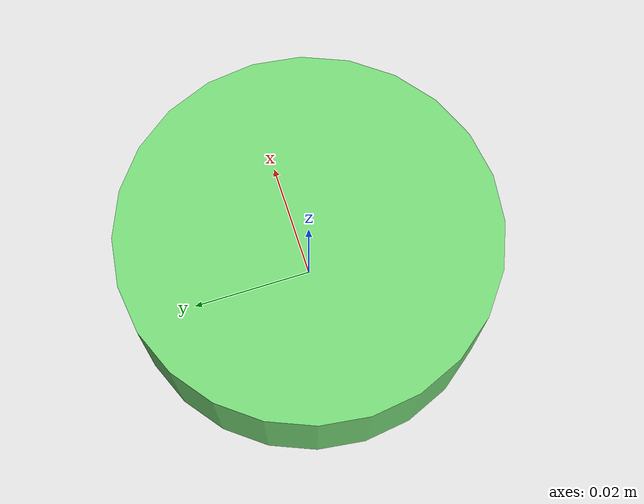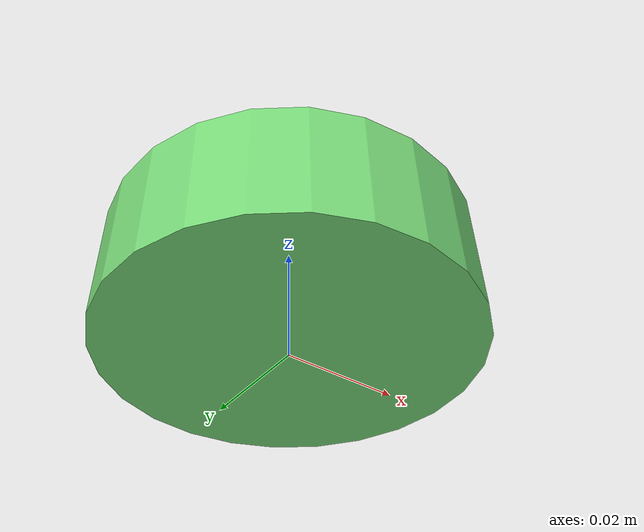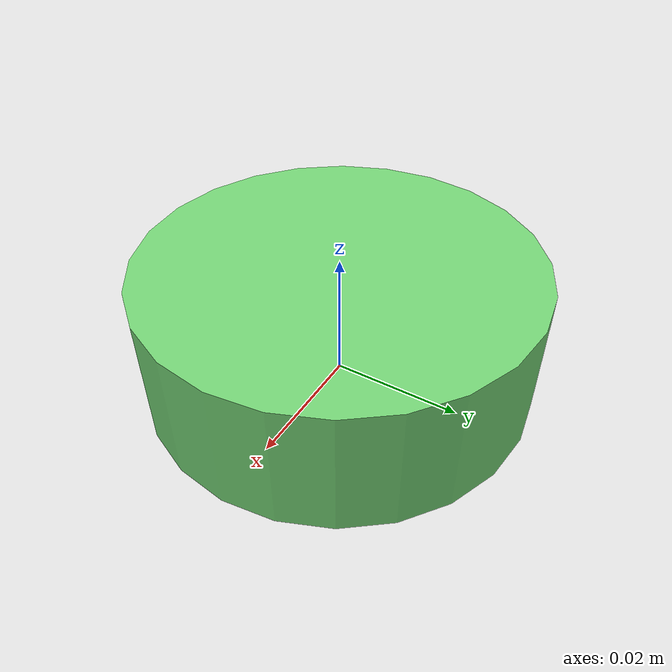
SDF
<sdf version="1.7">
  <model name="disc_30">
    <link name="base_link">
      <inertial>
        <mass>0.05</mass>
        <inertia>
          <ixx>7.91e-06</ixx>
          <ixy>0</ixy>
          <ixz>0</ixz>
          <iyy>7.91e-06</iyy>
          <iyz>0</iyz>
          <izz>1.56e-05</izz>
        </inertia>
        <pose>0 0 0.0025 0 0 0</pose>
      </inertial>
      <pose>0 0 0 0 0 0</pose>
      <visual name="visual">
        <pose>0 0 0.01 0 0 0</pose>
        <geometry>
            <cylinder>
              <radius>0.03</radius>
              <length>0.02</length>
            </cylinder>
        </geometry>
        <material>
          <diffuse>0.4584960705920328 0.8349007406462668 0.46141030483696543 1</diffuse>
        </material>
      </visual>
      <collision name="collision">
        <pose>0 0 0.01 0 0 0</pose>
        <geometry>
            <cylinder>
              <radius>0.03</radius>
              <length>0.02</length>
            </cylinder>
        </geometry>
      </collision>
      <collision name="ball1">
        <pose>0.021213203435596423 0.021213203435596423 0 0 0 0</pose>
        <geometry>
          <sphere>
            <radius>1e-07</radius>
          </sphere>
        </geometry>
      </collision>
      <collision name="ball2">
        <pose>-0.021213203435596423 0.021213203435596423 0 0 0 0</pose>
        <geometry>
          <sphere>
            <radius>1e-07</radius>
          </sphere>
        </geometry>
      </collision>
      <collision name="ball3">
        <pose>0.021213203435596423 -0.021213203435596423 0 0 0 0</pose>
        <geometry>
          <sphere>
            <radius>1e-07</radius>
          </sphere>
        </geometry>
      </collision>
      <collision name="ball4">
        <pose>-0.021213203435596423 -0.021213203435596423 0 0 0 0</pose>
        <geometry>
          <sphere>
            <radius>1e-07</radius>
          </sphere>
        </geometry>
      </collision>
    </link>
  </model>
</sdf>
